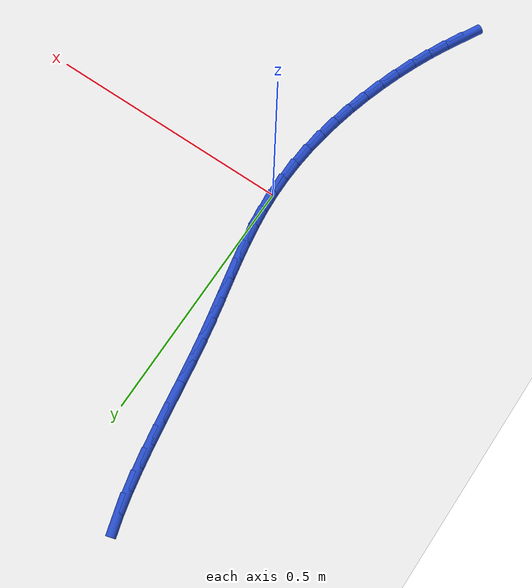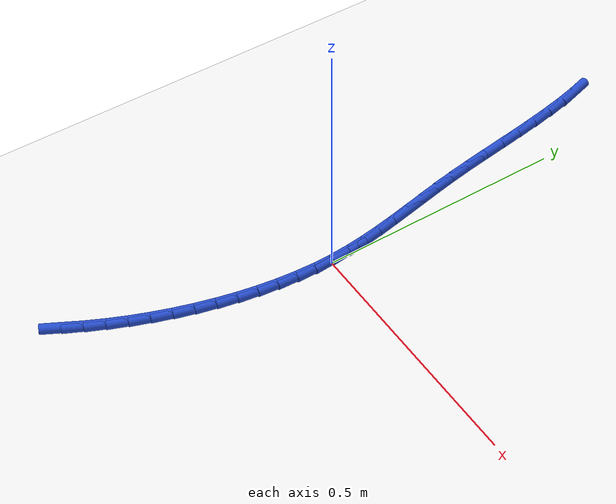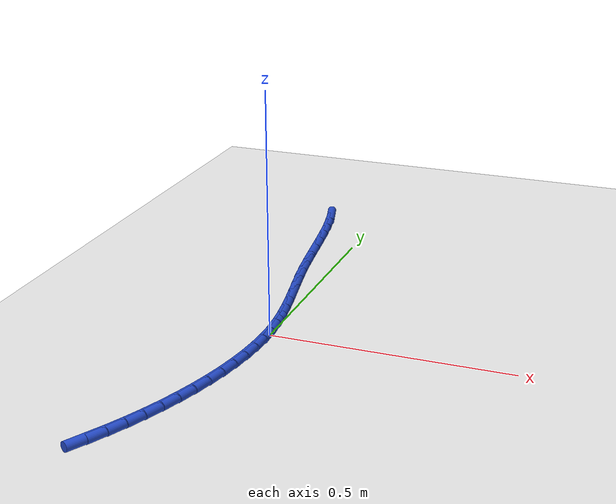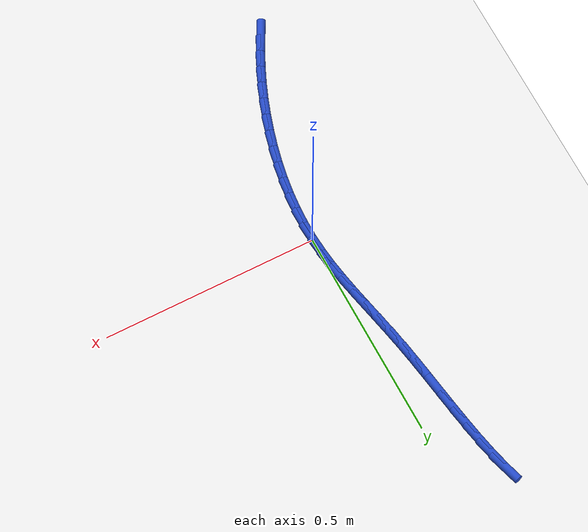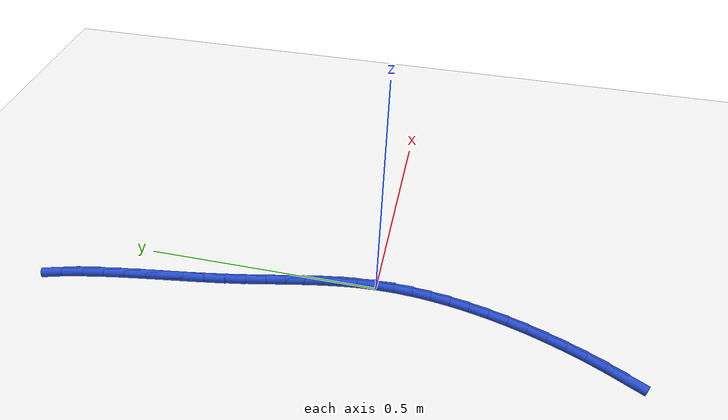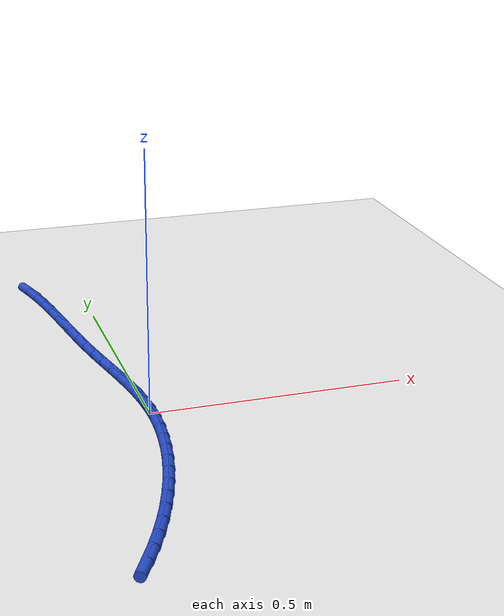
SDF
<sdf version="1.6">
 <world name="default">
  <model name="ground_plane">
   <static>1</static>
   <link name="link">
    <collision name="collision">
     <geometry><plane><normal>0 0 1</normal><size>100 100</size></plane></geometry>
     <surface><friction><ode><mu>100</mu><mu2>50</mu2></ode></friction></surface>
    </collision>
    <visual name="visual">
     <cast_shadows>0</cast_shadows>
     <geometry><plane><normal>0 0 1</normal><size>100 100</size></plane></geometry>
     <material>
      <script><uri>file://media/materials/scripts/gazebo.material</uri><name>Gazebo/WhiteGlow</name></script>
     </material>
    </visual>
   </link>
  </model>
  <model name="line">
   <link name="link_0">
    <pose>-3.642919299551295e-17 5.551115123125783e-17 0.01 0 1.57 -1.5058916821787278</pose>
    <collision name="collision">
     <geometry><cylinder><radius>0.01</radius><length>0.08</length></cylinder></geometry>
    </collision>
    <visual name="visual">
     <material>
      <script><name>Gazebo/Blue</name><uri>file://media/materials/scripts/gazebo.material</uri></script>
     </material>
     <geometry><cylinder><radius>0.01</radius><length>0.08</length></cylinder></geometry>
    </visual>
   </link>
   <link name="link_1">
    <pose>-0.0024704983119583856 0.03801004177049731 0.01 0 1.57 -1.4568781691883872</pose>
    <collision name="collision">
     <geometry><cylinder><radius>0.01</radius><length>0.08</length></cylinder></geometry>
    </collision>
    <visual name="visual">
     <material>
      <script><name>Gazebo/Blue</name><uri>file://media/materials/scripts/gazebo.material</uri></script>
     </material>
     <geometry><cylinder><radius>0.01</radius><length>0.08</length></cylinder></geometry>
    </visual>
   </link>
   <link name="link_2">
    <pose>-0.006784700317970747 0.0757171433615318 0.01 0 1.57 -1.4178943917646176</pose>
    <collision name="collision">
     <geometry><cylinder><radius>0.01</radius><length>0.08</length></cylinder></geometry>
    </collision>
    <visual name="visual">
     <material>
      <script><name>Gazebo/Blue</name><uri>file://media/materials/scripts/gazebo.material</uri></script>
     </material>
     <geometry><cylinder><radius>0.01</radius><length>0.08</length></cylinder></geometry>
    </visual>
   </link>
   <link name="link_3">
    <pose>-0.012589108862499433 0.11338248831321925 0.01 0 1.57 -1.3895895218170407</pose>
    <collision name="collision">
     <geometry><cylinder><radius>0.01</radius><length>0.08</length></cylinder></geometry>
    </collision>
    <visual name="visual">
     <material>
      <script><name>Gazebo/Blue</name><uri>file://media/materials/scripts/gazebo.material</uri></script>
     </material>
     <geometry><cylinder><radius>0.01</radius><length>0.08</length></cylinder></geometry>
    </visual>
   </link>
   <link name="link_4">
    <pose>-0.019530226790006763 0.15126726016567543 0.01 0 1.57 -1.372116543712745</pose>
    <collision name="collision">
     <geometry><cylinder><radius>0.01</radius><length>0.08</length></cylinder></geometry>
    </collision>
    <visual name="visual">
     <material>
      <script><name>Gazebo/Blue</name><uri>file://media/materials/scripts/gazebo.material</uri></script>
     </material>
     <geometry><cylinder><radius>0.01</radius><length>0.08</length></cylinder></geometry>
    </visual>
   </link>
   <link name="link_5">
    <pose>-0.027254556944955058 0.18963264245901604 0.01 0 1.57 -1.3652363332114648</pose>
    <collision name="collision">
     <geometry><cylinder><radius>0.01</radius><length>0.08</length></cylinder></geometry>
    </collision>
    <visual name="visual">
     <material>
      <script><name>Gazebo/Blue</name><uri>file://media/materials/scripts/gazebo.material</uri></script>
     </material>
     <geometry><cylinder><radius>0.01</radius><length>0.08</length></cylinder></geometry>
    </visual>
   </link>
   <link name="link_6">
    <pose>-0.03540860217180663 0.2287398187333568 0.01 0 1.57 -1.3684139475995292</pose>
    <collision name="collision">
     <geometry><cylinder><radius>0.01</radius><length>0.08</length></cylinder></geometry>
    </collision>
    <visual name="visual">
     <material>
      <script><name>Gazebo/Blue</name><uri>file://media/materials/scripts/gazebo.material</uri></script>
     </material>
     <geometry><cylinder><radius>0.01</radius><length>0.08</length></cylinder></geometry>
    </visual>
   </link>
   <link name="link_7">
    <pose>-0.0436388653150238 0.2688499725288135 0.01 0 1.57 -1.380892299765392</pose>
    <collision name="collision">
     <geometry><cylinder><radius>0.01</radius><length>0.08</length></cylinder></geometry>
    </collision>
    <visual name="visual">
     <material>
      <script><name>Gazebo/Blue</name><uri>file://media/materials/scripts/gazebo.material</uri></script>
     </material>
     <geometry><cylinder><radius>0.01</radius><length>0.08</length></cylinder></geometry>
    </visual>
   </link>
   <link name="link_8">
    <pose>-0.05159184921906886 0.3102242873855017 0.01 0 1.57 -1.4008927814023446</pose>
    <collision name="collision">
     <geometry><cylinder><radius>0.01</radius><length>0.08</length></cylinder></geometry>
    </collision>
    <visual name="visual">
     <material>
      <script><name>Gazebo/Blue</name><uri>file://media/materials/scripts/gazebo.material</uri></script>
     </material>
     <geometry><cylinder><radius>0.01</radius><length>0.08</length></cylinder></geometry>
    </visual>
   </link>
   <link name="link_9">
    <pose>-0.05894560707069789 0.35308896360972175 0.01 0 1.57 -1.417779490976197</pose>
    <collision name="collision">
     <geometry><cylinder><radius>0.01</radius><length>0.08</length></cylinder></geometry>
    </collision>
    <visual name="visual">
     <material>
      <script><name>Gazebo/Blue</name><uri>file://media/materials/scripts/gazebo.material</uri></script>
     </material>
     <geometry><cylinder><radius>0.01</radius><length>0.08</length></cylinder></geometry>
    </visual>
   </link>
   <link name="link_10">
    <pose>-0.06575636336411009 0.3972508825936538 0.01 0 1.57 -1.4257110879423016</pose>
    <collision name="collision">
     <geometry><cylinder><radius>0.01</radius><length>0.08</length></cylinder></geometry>
    </collision>
    <visual name="visual">
     <material>
      <script><name>Gazebo/Blue</name><uri>file://media/materials/scripts/gazebo.material</uri></script>
     </material>
     <geometry><cylinder><radius>0.01</radius><length>0.08</length></cylinder></geometry>
    </visual>
   </link>
   <link name="link_11">
    <pose>-0.07232984795040258 0.44224027249518477 0.01 0 1.57 -1.4252506819312438</pose>
    <collision name="collision">
     <geometry><cylinder><radius>0.01</radius><length>0.08</length></cylinder></geometry>
    </collision>
    <visual name="visual">
     <material>
      <script><name>Gazebo/Blue</name><uri>file://media/materials/scripts/gazebo.material</uri></script>
     </material>
     <geometry><cylinder><radius>0.01</radius><length>0.08</length></cylinder></geometry>
    </visual>
   </link>
   <link name="link_12">
    <pose>-0.07897620447169766 0.4875824674307357 0.01 0 1.57 -1.4165833960718521</pose>
    <collision name="collision">
     <geometry><cylinder><radius>0.01</radius><length>0.08</length></cylinder></geometry>
    </collision>
    <visual name="visual">
     <material>
      <script><name>Gazebo/Blue</name><uri>file://media/materials/scripts/gazebo.material</uri></script>
     </material>
     <geometry><cylinder><radius>0.01</radius><length>0.08</length></cylinder></geometry>
    </visual>
   </link>
   <link name="link_13">
    <pose>-0.08600557657011755 0.532802801516727 0.01 0 1.57 -1.3994350408714065</pose>
    <collision name="collision">
     <geometry><cylinder><radius>0.01</radius><length>0.08</length></cylinder></geometry>
    </collision>
    <visual name="visual">
     <material>
      <script><name>Gazebo/Blue</name><uri>file://media/materials/scripts/gazebo.material</uri></script>
     </material>
     <geometry><cylinder><radius>0.01</radius><length>0.08</length></cylinder></geometry>
    </visual>
   </link>
   <link name="link_14">
    <pose>-0.09372810788778446 0.5774266088695794 0.01 0 1.57 -1.3730627541175686</pose>
    <collision name="collision">
     <geometry><cylinder><radius>0.01</radius><length>0.08</length></cylinder></geometry>
    </collision>
    <visual name="visual">
     <material>
      <script><name>Gazebo/Blue</name><uri>file://media/materials/scripts/gazebo.material</uri></script>
     </material>
     <geometry><cylinder><radius>0.01</radius><length>0.08</length></cylinder></geometry>
    </visual>
   </link>
   <link name="link_15">
    <pose>-0.10245394206682074 0.6209792236057141 0.01 0 1.57 -1.336204620259618</pose>
    <collision name="collision">
     <geometry><cylinder><radius>0.01</radius><length>0.08</length></cylinder></geometry>
    </collision>
    <visual name="visual">
     <material>
      <script><name>Gazebo/Blue</name><uri>file://media/materials/scripts/gazebo.material</uri></script>
     </material>
     <geometry><cylinder><radius>0.01</radius><length>0.08</length></cylinder></geometry>
    </visual>
   </link>
   <link name="link_16">
    <pose>-0.11249322274934863 0.662985979841552 0.01 0 1.57 -1.2869971500145743</pose>
    <collision name="collision">
     <geometry><cylinder><radius>0.01</radius><length>0.08</length></cylinder></geometry>
    </collision>
    <visual name="visual">
     <material>
      <script><name>Gazebo/Blue</name><uri>file://media/materials/scripts/gazebo.material</uri></script>
     </material>
     <geometry><cylinder><radius>0.01</radius><length>0.08</length></cylinder></geometry>
    </visual>
   </link>
   <link name="link_177">
    <pose>-0.12998892646837873 -0.4936114947926961 0.01 0 1.57 1.0776777265843143</pose>
    <collision name="collision">
     <geometry><cylinder><radius>0.01</radius><length>0.08</length></cylinder></geometry>
    </collision>
    <visual name="visual">
     <material>
      <script><name>Gazebo/Blue</name><uri>file://media/materials/scripts/gazebo.material</uri></script>
     </material>
     <geometry><cylinder><radius>0.01</radius><length>0.08</length></cylinder></geometry>
    </visual>
   </link>
   <link name="link_178">
    <pose>-0.11126035573132438 -0.45876120291420064 0.01 0 1.57 1.117437401820977</pose>
    <collision name="collision">
     <geometry><cylinder><radius>0.01</radius><length>0.08</length></cylinder></geometry>
    </collision>
    <visual name="visual">
     <material>
      <script><name>Gazebo/Blue</name><uri>file://media/materials/scripts/gazebo.material</uri></script>
     </material>
     <geometry><cylinder><radius>0.01</radius><length>0.08</length></cylinder></geometry>
    </visual>
   </link>
   <link name="link_179">
    <pose>-0.0938853680097039 -0.4230985867299675 0.01 0 1.57 1.1561574944643072</pose>
    <collision name="collision">
     <geometry><cylinder><radius>0.01</radius><length>0.08</length></cylinder></geometry>
    </collision>
    <visual name="visual">
     <material>
      <script><name>Gazebo/Blue</name><uri>file://media/materials/scripts/gazebo.material</uri></script>
     </material>
     <geometry><cylinder><radius>0.01</radius><length>0.08</length></cylinder></geometry>
    </visual>
   </link>
   <link name="link_180">
    <pose>-0.07785115436823929 -0.38667023293687935 0.01 0 1.57 1.1938398620508606</pose>
    <collision name="collision">
     <geometry><cylinder><radius>0.01</radius><length>0.08</length></cylinder></geometry>
    </collision>
    <visual name="visual">
     <material>
      <script><name>Gazebo/Blue</name><uri>file://media/materials/scripts/gazebo.material</uri></script>
     </material>
     <geometry><cylinder><radius>0.01</radius><length>0.08</length></cylinder></geometry>
    </visual>
   </link>
   <link name="link_181">
    <pose>-0.06314490587165368 -0.34952272823182207 0.01 0 1.57 1.2305102441943214</pose>
    <collision name="collision">
     <geometry><cylinder><radius>0.01</radius><length>0.08</length></cylinder></geometry>
    </collision>
    <visual name="visual">
     <material>
      <script><name>Gazebo/Blue</name><uri>file://media/materials/scripts/gazebo.material</uri></script>
     </material>
     <geometry><cylinder><radius>0.01</radius><length>0.08</length></cylinder></geometry>
    </visual>
   </link>
   <link name="link_182">
    <pose>-0.049754608753883274 -0.3117033110324038 0.01 0 1.57 1.266983221082098</pose>
    <collision name="collision">
     <geometry><cylinder><radius>0.01</radius><length>0.08</length></cylinder></geometry>
    </collision>
    <visual name="visual">
     <material>
      <script><name>Gazebo/Blue</name><uri>file://media/materials/scripts/gazebo.material</uri></script>
     </material>
     <geometry><cylinder><radius>0.01</radius><length>0.08</length></cylinder></geometry>
    </visual>
   </link>
   <link name="link_183">
    <pose>-0.03771319903857413 -0.2732960606059335 0.01 0 1.57 1.3046737977840257</pose>
    <collision name="collision">
     <geometry><cylinder><radius>0.01</radius><length>0.08</length></cylinder></geometry>
    </collision>
    <visual name="visual">
     <material>
      <script><name>Gazebo/Blue</name><uri>file://media/materials/scripts/gazebo.material</uri></script>
     </material>
     <geometry><cylinder><radius>0.01</radius><length>0.08</length></cylinder></geometry>
    </visual>
   </link>
   <link name="link_184">
    <pose>-0.027121742431857797 -0.2344408953105997 0.01 0 1.57 1.344041700215297</pose>
    <collision name="collision">
     <geometry><cylinder><radius>0.01</radius><length>0.08</length></cylinder></geometry>
    </collision>
    <visual name="visual">
     <material>
      <script><name>Gazebo/Blue</name><uri>file://media/materials/scripts/gazebo.material</uri></script>
     </material>
     <geometry><cylinder><radius>0.01</radius><length>0.08</length></cylinder></geometry>
    </visual>
   </link>
   <link name="link_185">
    <pose>-0.018086988611019834 -0.1952823920876084 0.01 0 1.57 1.3854652242681869</pose>
    <collision name="collision">
     <geometry><cylinder><radius>0.01</radius><length>0.08</length></cylinder></geometry>
    </collision>
    <visual name="visual">
     <material>
      <script><name>Gazebo/Blue</name><uri>file://media/materials/scripts/gazebo.material</uri></script>
     </material>
     <geometry><cylinder><radius>0.01</radius><length>0.08</length></cylinder></geometry>
    </visual>
   </link>
   <link name="link_186">
    <pose>-0.01071568725334594 -0.15596512787816647 0.01 0 1.57 1.429339800388004</pose>
    <collision name="collision">
     <geometry><cylinder><radius>0.01</radius><length>0.08</length></cylinder></geometry>
    </collision>
    <visual name="visual">
     <material>
      <script><name>Gazebo/Blue</name><uri>file://media/materials/scripts/gazebo.material</uri></script>
     </material>
     <geometry><cylinder><radius>0.01</radius><length>0.08</length></cylinder></geometry>
    </visual>
   </link>
   <link name="link_187">
    <pose>-0.005114588036121355 -0.1166336796234781 0.01 0 1.57 1.4760793890331954</pose>
    <collision name="collision">
     <geometry><cylinder><radius>0.01</radius><length>0.08</length></cylinder></geometry>
    </collision>
    <visual name="visual">
     <material>
      <script><name>Gazebo/Blue</name><uri>file://media/materials/scripts/gazebo.material</uri></script>
     </material>
     <geometry><cylinder><radius>0.01</radius><length>0.08</length></cylinder></geometry>
    </visual>
   </link>
   <link name="link_188">
    <pose>-0.0013904406366318026 -0.07743262426475025 0.01 0 1.57 1.5261145284165054</pose>
    <collision name="collision">
     <geometry><cylinder><radius>0.01</radius><length>0.08</length></cylinder></geometry>
    </collision>
    <visual name="visual">
     <material>
      <script><name>Gazebo/Blue</name><uri>file://media/materials/scripts/gazebo.material</uri></script>
     </material>
     <geometry><cylinder><radius>0.01</radius><length>0.08</length></cylinder></geometry>
    </visual>
   </link>
   <link name="link_189">
    <pose>0.0003500052678371531 -0.038506538743188864 0.01 0 1.57 -1.5617070749248447</pose>
    <collision name="collision">
     <geometry><cylinder><radius>0.01</radius><length>0.08</length></cylinder></geometry>
    </collision>
    <visual name="visual">
     <material>
      <script><name>Gazebo/Blue</name><uri>file://media/materials/scripts/gazebo.material</uri></script>
     </material>
     <geometry><cylinder><radius>0.01</radius><length>0.08</length></cylinder></geometry>
    </visual>
   </link>
   <link name="link_190">
    <pose>-3.8163916471489756e-17 6.938893903907228e-18 0.01 0 1.57 -1.5037634360319483</pose>
    <collision name="collision">
     <geometry><cylinder><radius>0.01</radius><length>0.08</length></cylinder></geometry>
    </collision>
    <visual name="visual">
     <material>
      <script><name>Gazebo/Blue</name><uri>file://media/materials/scripts/gazebo.material</uri></script>
     </material>
     <geometry><cylinder><radius>0.01</radius><length>0.08</length></cylinder></geometry>
    </visual>
   </link>
   <link name="link_191">
    <pose>-0.0025472061174289344 0.03794241502361042 0.01 0 1.57 -1.503763436031948</pose>
    <collision name="collision">
     <geometry><cylinder><radius>0.01</radius><length>0.08</length></cylinder></geometry>
    </collision>
    <visual name="visual">
     <material>
      <script><name>Gazebo/Blue</name><uri>file://media/materials/scripts/gazebo.material</uri></script>
     </material>
     <geometry><cylinder><radius>0.01</radius><length>0.08</length></cylinder></geometry>
    </visual>
   </link>
  </model>
 </world>
</sdf>
